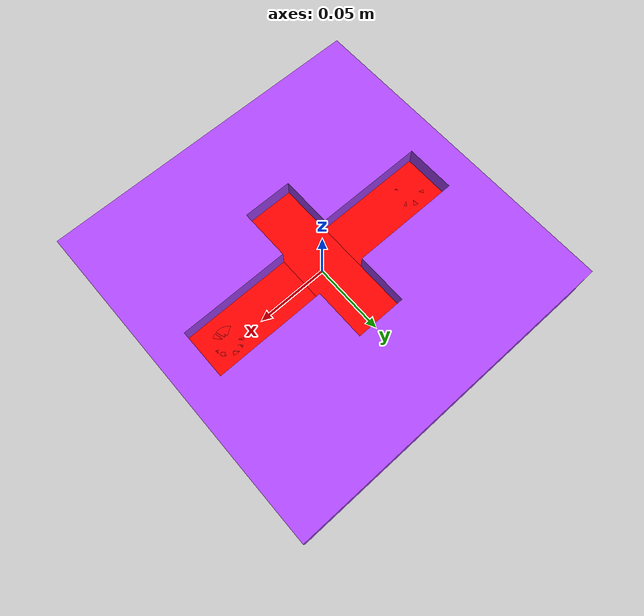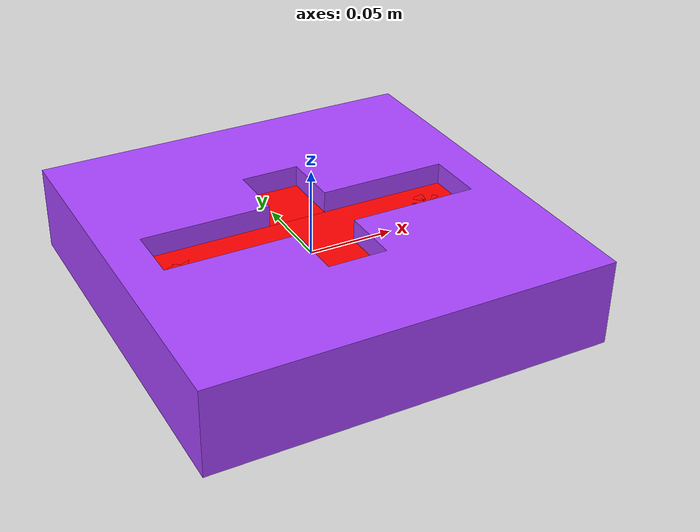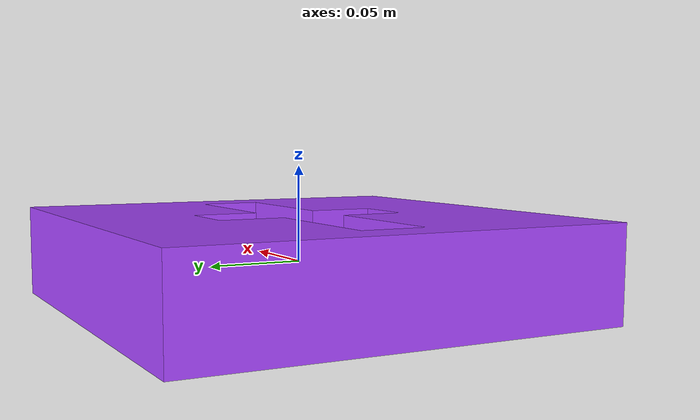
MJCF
<?xml version='1.0' encoding='utf-8'?>
<mujoco model="obj1">
  <asset>
    <mesh name="obj1" file="obj1.obj" scale="0.001 0.001 0.001" />
    <material name="mat1" rgba="0.65882 0.27059 1 1" />
  </asset>
  <worldbody>
    <body>
      <body name="object">
        <geom name="visual" mesh="obj1" type="mesh" group="1" contype="0" conaffinity="0" material="mat1" />
        <geom name="collision" mesh="obj1" type="mesh" group="0" density="50" friction="0.95 0.3 0.1" solimp="0.998 0.998 0.001" solref="0.001 1" condim="4" />

        <site name="bottom_site" pos="0 0 -0.025" size="0.005" rgba="0 0 0 0" />
        <site name="top_site" pos="0 0 0.025" size="0.005" rgba="0 0 0 0" />
        <site name="horizontal_radius_site" pos="0.03 0.03 0" size="0.005" rgba="0 0 0 0" />

        <!-- ================= Board 2 Frame Holes ================= -->
        <site name="hole_circle_left_site" pos="-0.075 0 0" size="0.0095 0.0125" rgba="1 0 0 1" type="cylinder" />
        <site name="hole_circle_right_site" pos="0.075 0 0" size="0.0095 0.0125" rgba="1 0 0 1" type="cylinder" />
        <site name="hole_slot_center_vertical_site" pos="0 0 0" size="0.017 0.052 0.0125" rgba="1 0 0 1" type="box" />
        <site name="hole_slot_center_horizontal_site" pos="0 0 0" size="0.092 0.017 0.0125" rgba="1 0 0 1" type="box" />
      </body>
    </body>
  </worldbody>
</mujoco>
